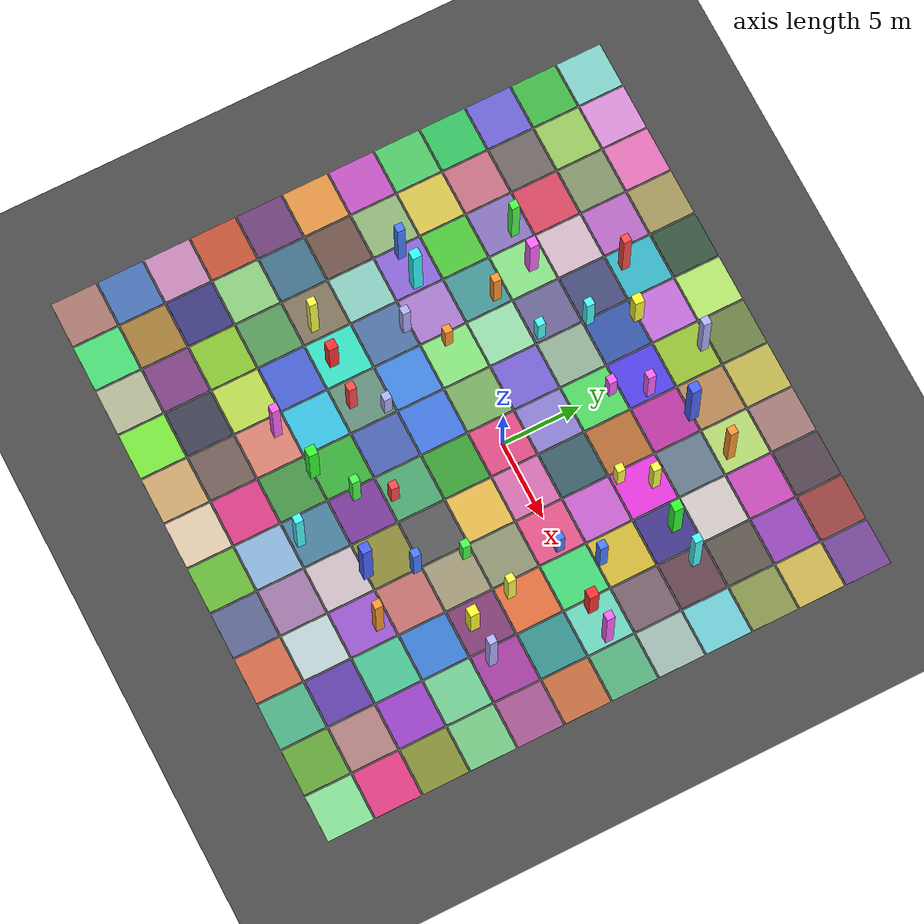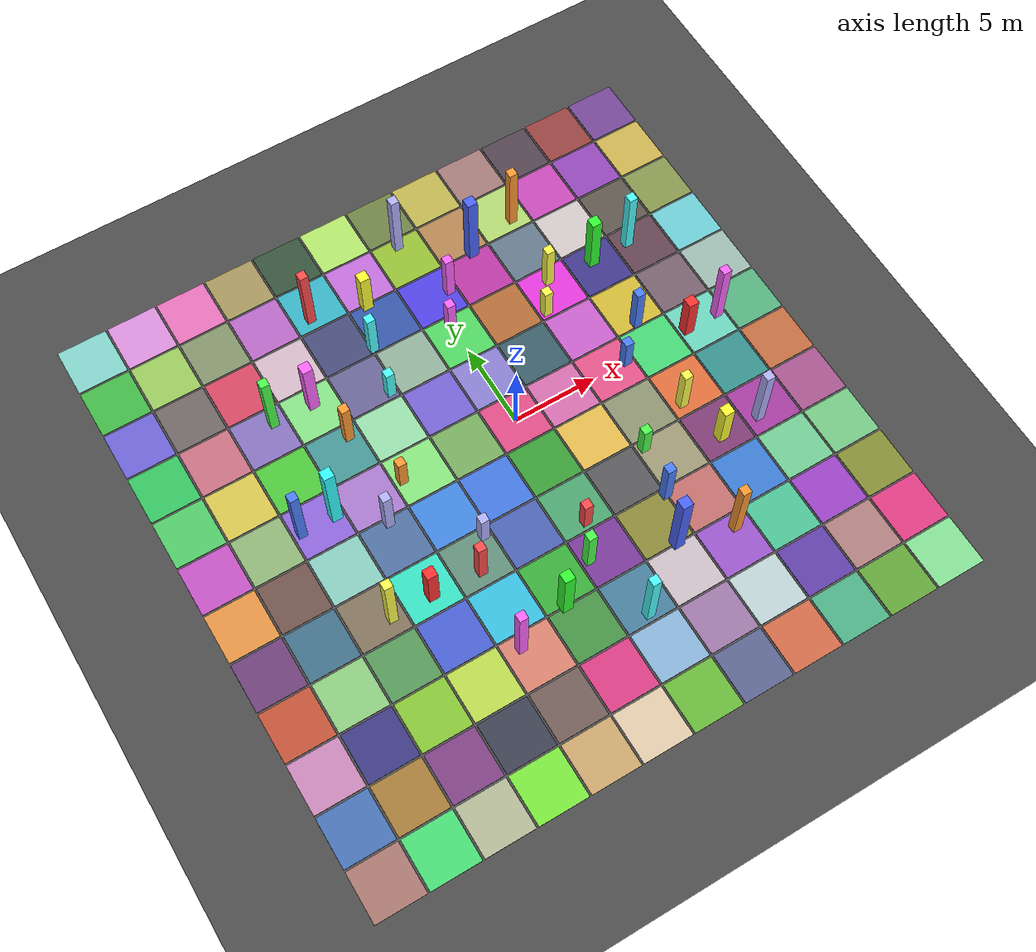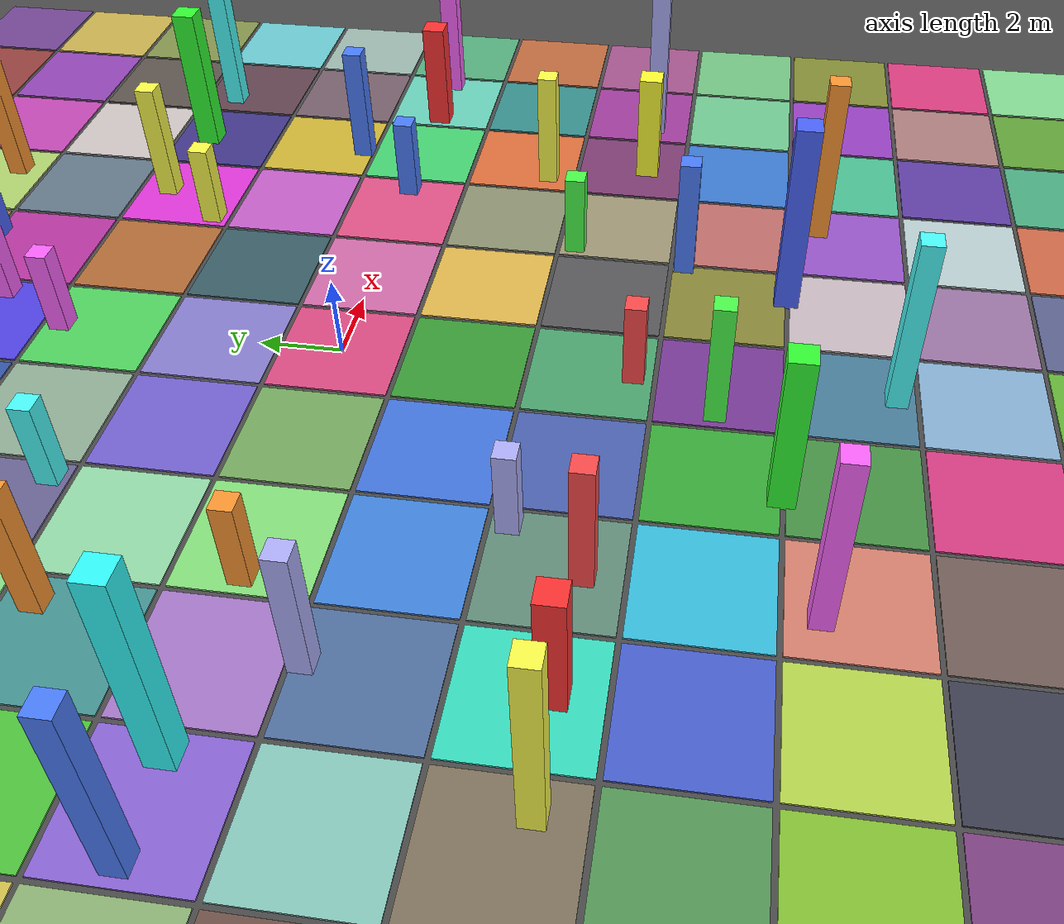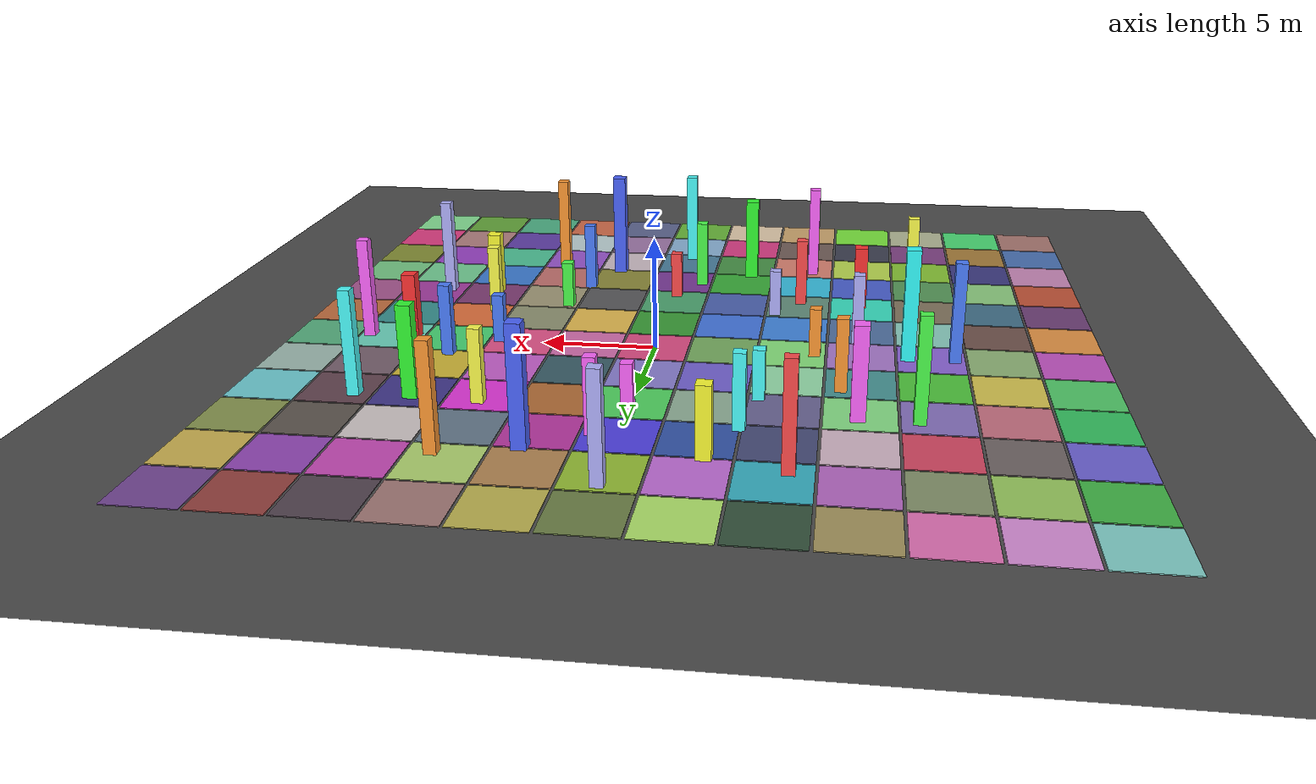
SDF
<?xml version="1.0" encoding="UTF-8"?>
<sdf version="1.9">
  <world name="swarm_autonomy_vio">
    <physics type="ode"><max_step_size>0.004</max_step_size><real_time_factor>1.0</real_time_factor><real_time_update_rate>250</real_time_update_rate></physics>
    <gravity>0 0 -9.8</gravity><magnetic_field>6e-06 2.3e-05 -4.2e-05</magnetic_field><atmosphere type="adiabatic"/>
    <scene><grid>false</grid><ambient>0.7 0.7 0.7 1</ambient><background>0.7 0.8 0.9 1</background><shadows>true</shadows></scene>
    <model name="ground_plane"><static>true</static><link name="link">
      <collision name="collision"><geometry><plane><normal>0 0 1</normal><size>1 1</size></plane></geometry><surface><friction><ode/></friction></surface></collision>
      <visual name="visual"><geometry><plane><normal>0 0 1</normal><size>200 200</size></plane></geometry>
        <material><ambient>0.3 0.3 0.3 1</ambient><diffuse>0.3 0.3 0.3 1</diffuse></material></visual>
      <pose>0 0 0 0 0 0</pose></link></model>
    <light name="sunUTC" type="directional"><pose>0 0 500 0 0 0</pose><cast_shadows>true</cast_shadows><intensity>1</intensity>
      <direction>0.001 0.625 -0.78</direction><diffuse>0.9 0.9 0.9 1</diffuse><specular>0.3 0.3 0.3 1</specular>
      <attenuation><range>2000</range><linear>0</linear><constant>1</constant><quadratic>0</quadratic></attenuation>
      <spot><inner_angle>0</inner_angle><outer_angle>0</outer_angle><falloff>0</falloff></spot></light>
    <model name="t_0_0"><static>true</static><pose>-18.0 -18.0 0.02 0 0 0</pose>
      <link name="l"><visual name="v"><geometry><box><size>2.88 2.88 0.04</size></box></geometry>
      <material><ambient>0.66 0.47 0.44 1</ambient><diffuse>0.66 0.47 0.44 1</diffuse></material></visual></link></model>
    <model name="t_0_1"><static>true</static><pose>-18.0 -15.0 0.02 0 0 0</pose>
      <link name="l"><visual name="v"><geometry><box><size>2.88 2.88 0.04</size></box></geometry>
      <material><ambient>0.29 0.45 0.71 1</ambient><diffuse>0.29 0.45 0.71 1</diffuse></material></visual></link></model>
    <model name="t_0_2"><static>true</static><pose>-18.0 -12.0 0.02 0 0 0</pose>
      <link name="l"><visual name="v"><geometry><box><size>2.88 2.88 0.04</size></box></geometry>
      <material><ambient>0.78 0.53 0.72 1</ambient><diffuse>0.78 0.53 0.72 1</diffuse></material></visual></link></model>
    <model name="t_0_3"><static>true</static><pose>-18.0 -9.0 0.02 0 0 0</pose>
      <link name="l"><visual name="v"><geometry><box><size>2.88 2.88 0.04</size></box></geometry>
      <material><ambient>0.76 0.33 0.22 1</ambient><diffuse>0.76 0.33 0.22 1</diffuse></material></visual></link></model>
    <model name="t_0_4"><static>true</static><pose>-18.0 -6.0 0.02 0 0 0</pose>
      <link name="l"><visual name="v"><geometry><box><size>2.88 2.88 0.04</size></box></geometry>
      <material><ambient>0.43 0.25 0.47 1</ambient><diffuse>0.43 0.25 0.47 1</diffuse></material></visual></link></model>
    <model name="t_0_5"><static>true</static><pose>-18.0 -3.0 0.02 0 0 0</pose>
      <link name="l"><visual name="v"><geometry><box><size>2.88 2.88 0.04</size></box></geometry>
      <material><ambient>0.89 0.58 0.27 1</ambient><diffuse>0.89 0.58 0.27 1</diffuse></material></visual></link></model>
    <model name="t_0_6"><static>true</static><pose>-18.0 0.0 0.02 0 0 0</pose>
      <link name="l"><visual name="v"><geometry><box><size>2.88 2.88 0.04</size></box></geometry>
      <material><ambient>0.76 0.33 0.76 1</ambient><diffuse>0.76 0.33 0.76 1</diffuse></material></visual></link></model>
    <model name="t_0_7"><static>true</static><pose>-18.0 3.0 0.02 0 0 0</pose>
      <link name="l"><visual name="v"><geometry><box><size>2.88 2.88 0.04</size></box></geometry>
      <material><ambient>0.32 0.79 0.41 1</ambient><diffuse>0.32 0.79 0.41 1</diffuse></material></visual></link></model>
    <model name="t_0_8"><static>true</static><pose>-18.0 6.0 0.02 0 0 0</pose>
      <link name="l"><visual name="v"><geometry><box><size>2.88 2.88 0.04</size></box></geometry>
      <material><ambient>0.21 0.76 0.38 1</ambient><diffuse>0.21 0.76 0.38 1</diffuse></material></visual></link></model>
    <model name="t_0_9"><static>true</static><pose>-18.0 9.0 0.02 0 0 0</pose>
      <link name="l"><visual name="v"><geometry><box><size>2.88 2.88 0.04</size></box></geometry>
      <material><ambient>0.43 0.39 0.84 1</ambient><diffuse>0.43 0.39 0.84 1</diffuse></material></visual></link></model>
    <model name="t_0_10"><static>true</static><pose>-18.0 12.0 0.02 0 0 0</pose>
      <link name="l"><visual name="v"><geometry><box><size>2.88 2.88 0.04</size></box></geometry>
      <material><ambient>0.26 0.72 0.28 1</ambient><diffuse>0.26 0.72 0.28 1</diffuse></material></visual></link></model>
    <model name="t_0_11"><static>true</static><pose>-18.0 15.0 0.02 0 0 0</pose>
      <link name="l"><visual name="v"><geometry><box><size>2.88 2.88 0.04</size></box></geometry>
      <material><ambient>0.51 0.82 0.79 1</ambient><diffuse>0.51 0.82 0.79 1</diffuse></material></visual></link></model>
    <model name="t_1_0"><static>true</static><pose>-15.0 -18.0 0.02 0 0 0</pose>
      <link name="l"><visual name="v"><geometry><box><size>2.88 2.88 0.04</size></box></geometry>
      <material><ambient>0.29 0.86 0.46 1</ambient><diffuse>0.29 0.86 0.46 1</diffuse></material></visual></link></model>
    <model name="t_1_1"><static>true</static><pose>-15.0 -15.0 0.02 0 0 0</pose>
      <link name="l"><visual name="v"><geometry><box><size>2.88 2.88 0.04</size></box></geometry>
      <material><ambient>0.65 0.49 0.23 1</ambient><diffuse>0.65 0.49 0.23 1</diffuse></material></visual></link></model>
    <model name="t_1_2"><static>true</static><pose>-15.0 -12.0 0.02 0 0 0</pose>
      <link name="l"><visual name="v"><geometry><box><size>2.88 2.88 0.04</size></box></geometry>
      <material><ambient>0.24 0.23 0.51 1</ambient><diffuse>0.24 0.23 0.51 1</diffuse></material></visual></link></model>
    <model name="t_1_3"><static>true</static><pose>-15.0 -9.0 0.02 0 0 0</pose>
      <link name="l"><visual name="v"><geometry><box><size>2.88 2.88 0.04</size></box></geometry>
      <material><ambient>0.55 0.80 0.50 1</ambient><diffuse>0.55 0.80 0.50 1</diffuse></material></visual></link></model>
    <model name="t_1_4"><static>true</static><pose>-15.0 -6.0 0.02 0 0 0</pose>
      <link name="l"><visual name="v"><geometry><box><size>2.88 2.88 0.04</size></box></geometry>
      <material><ambient>0.26 0.44 0.54 1</ambient><diffuse>0.26 0.44 0.54 1</diffuse></material></visual></link></model>
    <model name="t_1_5"><static>true</static><pose>-15.0 -3.0 0.02 0 0 0</pose>
      <link name="l"><visual name="v"><geometry><box><size>2.88 2.88 0.04</size></box></geometry>
      <material><ambient>0.44 0.33 0.30 1</ambient><diffuse>0.44 0.33 0.30 1</diffuse></material></visual></link></model>
    <model name="t_1_6"><static>true</static><pose>-15.0 0.0 0.02 0 0 0</pose>
      <link name="l"><visual name="v"><geometry><box><size>2.88 2.88 0.04</size></box></geometry>
      <material><ambient>0.56 0.71 0.47 1</ambient><diffuse>0.56 0.71 0.47 1</diffuse></material></visual></link></model>
    <model name="t_1_7"><static>true</static><pose>-15.0 3.0 0.02 0 0 0</pose>
      <link name="l"><visual name="v"><geometry><box><size>2.88 2.88 0.04</size></box></geometry>
      <material><ambient>0.84 0.77 0.31 1</ambient><diffuse>0.84 0.77 0.31 1</diffuse></material></visual></link></model>
    <model name="t_1_8"><static>true</static><pose>-15.0 6.0 0.02 0 0 0</pose>
      <link name="l"><visual name="v"><geometry><box><size>2.88 2.88 0.04</size></box></geometry>
      <material><ambient>0.78 0.44 0.51 1</ambient><diffuse>0.78 0.44 0.51 1</diffuse></material></visual></link></model>
    <model name="t_1_9"><static>true</static><pose>-15.0 9.0 0.02 0 0 0</pose>
      <link name="l"><visual name="v"><geometry><box><size>2.88 2.88 0.04</size></box></geometry>
      <material><ambient>0.44 0.40 0.40 1</ambient><diffuse>0.44 0.40 0.40 1</diffuse></material></visual></link></model>
    <model name="t_1_10"><static>true</static><pose>-15.0 12.0 0.02 0 0 0</pose>
      <link name="l"><visual name="v"><geometry><box><size>2.88 2.88 0.04</size></box></geometry>
      <material><ambient>0.60 0.79 0.37 1</ambient><diffuse>0.60 0.79 0.37 1</diffuse></material></visual></link></model>
    <model name="t_1_11"><static>true</static><pose>-15.0 15.0 0.02 0 0 0</pose>
      <link name="l"><visual name="v"><geometry><box><size>2.88 2.88 0.04</size></box></geometry>
      <material><ambient>0.85 0.56 0.85 1</ambient><diffuse>0.85 0.56 0.85 1</diffuse></material></visual></link></model>
    <model name="t_2_0"><static>true</static><pose>-12.0 -18.0 0.02 0 0 0</pose>
      <link name="l"><visual name="v"><geometry><box><size>2.88 2.88 0.04</size></box></geometry>
      <material><ambient>0.70 0.72 0.59 1</ambient><diffuse>0.70 0.72 0.59 1</diffuse></material></visual></link></model>
    <model name="t_2_1"><static>true</static><pose>-12.0 -15.0 0.02 0 0 0</pose>
      <link name="l"><visual name="v"><geometry><box><size>2.88 2.88 0.04</size></box></geometry>
      <material><ambient>0.50 0.26 0.52 1</ambient><diffuse>0.50 0.26 0.52 1</diffuse></material></visual></link></model>
    <model name="t_2_2"><static>true</static><pose>-12.0 -12.0 0.02 0 0 0</pose>
      <link name="l"><visual name="v"><geometry><box><size>2.88 2.88 0.04</size></box></geometry>
      <material><ambient>0.53 0.77 0.21 1</ambient><diffuse>0.53 0.77 0.21 1</diffuse></material></visual></link></model>
    <model name="t_2_3"><static>true</static><pose>-12.0 -9.0 0.02 0 0 0</pose>
      <link name="l"><visual name="v"><geometry><box><size>2.88 2.88 0.04</size></box></geometry>
      <material><ambient>0.34 0.60 0.35 1</ambient><diffuse>0.34 0.60 0.35 1</diffuse></material></visual></link></model>
    <model name="t_2_4"><static>true</static><pose>-12.0 -6.0 0.02 0 0 0</pose>
      <link name="l"><visual name="v"><geometry><box><size>2.88 2.88 0.04</size></box></geometry>
      <material><ambient>0.51 0.46 0.37 1</ambient><diffuse>0.51 0.46 0.37 1</diffuse></material></visual></link></model>
    <model name="t_2_5"><static>true</static><pose>-12.0 -3.0 0.02 0 0 0</pose>
      <link name="l"><visual name="v"><geometry><box><size>2.88 2.88 0.04</size></box></geometry>
      <material><ambient>0.54 0.80 0.75 1</ambient><diffuse>0.54 0.80 0.75 1</diffuse></material></visual></link></model>
    <model name="t_2_6"><static>true</static><pose>-12.0 0.0 0.02 0 0 0</pose>
      <link name="l"><visual name="v"><geometry><box><size>2.88 2.88 0.04</size></box></geometry>
      <material><ambient>0.55 0.40 0.85 1</ambient><diffuse>0.55 0.40 0.85 1</diffuse></material></visual></link></model>
    <model name="t_2_7"><static>true</static><pose>-12.0 3.0 0.02 0 0 0</pose>
      <link name="l"><visual name="v"><geometry><box><size>2.88 2.88 0.04</size></box></geometry>
      <material><ambient>0.31 0.78 0.24 1</ambient><diffuse>0.31 0.78 0.24 1</diffuse></material></visual></link></model>
    <model name="t_2_8"><static>true</static><pose>-12.0 6.0 0.02 0 0 0</pose>
      <link name="l"><visual name="v"><geometry><box><size>2.88 2.88 0.04</size></box></geometry>
      <material><ambient>0.53 0.45 0.75 1</ambient><diffuse>0.53 0.45 0.75 1</diffuse></material></visual></link></model>
    <model name="t_2_9"><static>true</static><pose>-12.0 9.0 0.02 0 0 0</pose>
      <link name="l"><visual name="v"><geometry><box><size>2.88 2.88 0.04</size></box></geometry>
      <material><ambient>0.84 0.28 0.39 1</ambient><diffuse>0.84 0.28 0.39 1</diffuse></material></visual></link></model>
    <model name="t_2_10"><static>true</static><pose>-12.0 12.0 0.02 0 0 0</pose>
      <link name="l"><visual name="v"><geometry><box><size>2.88 2.88 0.04</size></box></geometry>
      <material><ambient>0.52 0.58 0.42 1</ambient><diffuse>0.52 0.58 0.42 1</diffuse></material></visual></link></model>
    <model name="t_2_11"><static>true</static><pose>-12.0 15.0 0.02 0 0 0</pose>
      <link name="l"><visual name="v"><geometry><box><size>2.88 2.88 0.04</size></box></geometry>
      <material><ambient>0.89 0.45 0.72 1</ambient><diffuse>0.89 0.45 0.72 1</diffuse></material></visual></link></model>
    <model name="t_3_0"><static>true</static><pose>-9.0 -18.0 0.02 0 0 0</pose>
      <link name="l"><visual name="v"><geometry><box><size>2.88 2.88 0.04</size></box></geometry>
      <material><ambient>0.48 0.90 0.24 1</ambient><diffuse>0.48 0.90 0.24 1</diffuse></material></visual></link></model>
    <model name="t_3_1"><static>true</static><pose>-9.0 -15.0 0.02 0 0 0</pose>
      <link name="l"><visual name="v"><geometry><box><size>2.88 2.88 0.04</size></box></geometry>
      <material><ambient>0.24 0.25 0.32 1</ambient><diffuse>0.24 0.25 0.32 1</diffuse></material></visual></link></model>
    <model name="t_3_2"><static>true</static><pose>-9.0 -12.0 0.02 0 0 0</pose>
      <link name="l"><visual name="v"><geometry><box><size>2.88 2.88 0.04</size></box></geometry>
      <material><ambient>0.73 0.85 0.31 1</ambient><diffuse>0.73 0.85 0.31 1</diffuse></material></visual></link></model>
    <model name="t_3_3"><static>true</static><pose>-9.0 -9.0 0.02 0 0 0</pose>
      <link name="l"><visual name="v"><geometry><box><size>2.88 2.88 0.04</size></box></geometry>
      <material><ambient>0.29 0.38 0.82 1</ambient><diffuse>0.29 0.38 0.82 1</diffuse></material></visual></link></model>
    <model name="t_3_4"><static>true</static><pose>-9.0 -6.0 0.02 0 0 0</pose>
      <link name="l"><visual name="v"><geometry><box><size>2.88 2.88 0.04</size></box></geometry>
      <material><ambient>0.22 0.88 0.76 1</ambient><diffuse>0.22 0.88 0.76 1</diffuse></material></visual></link></model>
    <model name="t_3_5"><static>true</static><pose>-9.0 -3.0 0.02 0 0 0</pose>
      <link name="l"><visual name="v"><geometry><box><size>2.88 2.88 0.04</size></box></geometry>
      <material><ambient>0.32 0.45 0.64 1</ambient><diffuse>0.32 0.45 0.64 1</diffuse></material></visual></link></model>
    <model name="t_3_6"><static>true</static><pose>-9.0 0.0 0.02 0 0 0</pose>
      <link name="l"><visual name="v"><geometry><box><size>2.88 2.88 0.04</size></box></geometry>
      <material><ambient>0.66 0.48 0.80 1</ambient><diffuse>0.66 0.48 0.80 1</diffuse></material></visual></link></model>
    <model name="t_3_7"><static>true</static><pose>-9.0 3.0 0.02 0 0 0</pose>
      <link name="l"><visual name="v"><geometry><box><size>2.88 2.88 0.04</size></box></geometry>
      <material><ambient>0.28 0.59 0.59 1</ambient><diffuse>0.28 0.59 0.59 1</diffuse></material></visual></link></model>
    <model name="t_3_8"><static>true</static><pose>-9.0 6.0 0.02 0 0 0</pose>
      <link name="l"><visual name="v"><geometry><box><size>2.88 2.88 0.04</size></box></geometry>
      <material><ambient>0.53 0.88 0.53 1</ambient><diffuse>0.53 0.88 0.53 1</diffuse></material></visual></link></model>
    <model name="t_3_9"><static>true</static><pose>-9.0 9.0 0.02 0 0 0</pose>
      <link name="l"><visual name="v"><geometry><box><size>2.88 2.88 0.04</size></box></geometry>
      <material><ambient>0.83 0.72 0.78 1</ambient><diffuse>0.83 0.72 0.78 1</diffuse></material></visual></link></model>
    <model name="t_3_10"><static>true</static><pose>-9.0 12.0 0.02 0 0 0</pose>
      <link name="l"><visual name="v"><geometry><box><size>2.88 2.88 0.04</size></box></geometry>
      <material><ambient>0.72 0.41 0.77 1</ambient><diffuse>0.72 0.41 0.77 1</diffuse></material></visual></link></model>
    <model name="t_3_11"><static>true</static><pose>-9.0 15.0 0.02 0 0 0</pose>
      <link name="l"><visual name="v"><geometry><box><size>2.88 2.88 0.04</size></box></geometry>
      <material><ambient>0.65 0.59 0.37 1</ambient><diffuse>0.65 0.59 0.37 1</diffuse></material></visual></link></model>
    <model name="t_4_0"><static>true</static><pose>-6.0 -18.0 0.02 0 0 0</pose>
      <link name="l"><visual name="v"><geometry><box><size>2.88 2.88 0.04</size></box></geometry>
      <material><ambient>0.80 0.65 0.43 1</ambient><diffuse>0.80 0.65 0.43 1</diffuse></material></visual></link></model>
    <model name="t_4_1"><static>true</static><pose>-6.0 -15.0 0.02 0 0 0</pose>
      <link name="l"><visual name="v"><geometry><box><size>2.88 2.88 0.04</size></box></geometry>
      <material><ambient>0.45 0.37 0.35 1</ambient><diffuse>0.45 0.37 0.35 1</diffuse></material></visual></link></model>
    <model name="t_4_2"><static>true</static><pose>-6.0 -12.0 0.02 0 0 0</pose>
      <link name="l"><visual name="v"><geometry><box><size>2.88 2.88 0.04</size></box></geometry>
      <material><ambient>0.85 0.51 0.44 1</ambient><diffuse>0.85 0.51 0.44 1</diffuse></material></visual></link></model>
    <model name="t_4_3"><static>true</static><pose>-6.0 -9.0 0.02 0 0 0</pose>
      <link name="l"><visual name="v"><geometry><box><size>2.88 2.88 0.04</size></box></geometry>
      <material><ambient>0.22 0.75 0.88 1</ambient><diffuse>0.22 0.75 0.88 1</diffuse></material></visual></link></model>
    <model name="t_4_4"><static>true</static><pose>-6.0 -6.0 0.02 0 0 0</pose>
      <link name="l"><visual name="v"><geometry><box><size>2.88 2.88 0.04</size></box></geometry>
      <material><ambient>0.39 0.56 0.49 1</ambient><diffuse>0.39 0.56 0.49 1</diffuse></material></visual></link></model>
    <model name="t_4_5"><static>true</static><pose>-6.0 -3.0 0.02 0 0 0</pose>
      <link name="l"><visual name="v"><geometry><box><size>2.88 2.88 0.04</size></box></geometry>
      <material><ambient>0.26 0.53 0.88 1</ambient><diffuse>0.26 0.53 0.88 1</diffuse></material></visual></link></model>
    <model name="t_4_6"><static>true</static><pose>-6.0 0.0 0.02 0 0 0</pose>
      <link name="l"><visual name="v"><geometry><box><size>2.88 2.88 0.04</size></box></geometry>
      <material><ambient>0.53 0.89 0.49 1</ambient><diffuse>0.53 0.89 0.49 1</diffuse></material></visual></link></model>
    <model name="t_4_7"><static>true</static><pose>-6.0 3.0 0.02 0 0 0</pose>
      <link name="l"><visual name="v"><geometry><box><size>2.88 2.88 0.04</size></box></geometry>
      <material><ambient>0.59 0.87 0.67 1</ambient><diffuse>0.59 0.87 0.67 1</diffuse></material></visual></link></model>
    <model name="t_4_8"><static>true</static><pose>-6.0 6.0 0.02 0 0 0</pose>
      <link name="l"><visual name="v"><geometry><box><size>2.88 2.88 0.04</size></box></geometry>
      <material><ambient>0.42 0.40 0.59 1</ambient><diffuse>0.42 0.40 0.59 1</diffuse></material></visual></link></model>
    <model name="t_4_9"><static>true</static><pose>-6.0 9.0 0.02 0 0 0</pose>
      <link name="l"><visual name="v"><geometry><box><size>2.88 2.88 0.04</size></box></geometry>
      <material><ambient>0.28 0.30 0.48 1</ambient><diffuse>0.28 0.30 0.48 1</diffuse></material></visual></link></model>
    <model name="t_4_10"><static>true</static><pose>-6.0 12.0 0.02 0 0 0</pose>
      <link name="l"><visual name="v"><geometry><box><size>2.88 2.88 0.04</size></box></geometry>
      <material><ambient>0.22 0.70 0.77 1</ambient><diffuse>0.22 0.70 0.77 1</diffuse></material></visual></link></model>
    <model name="t_4_11"><static>true</static><pose>-6.0 15.0 0.02 0 0 0</pose>
      <link name="l"><visual name="v"><geometry><box><size>2.88 2.88 0.04</size></box></geometry>
      <material><ambient>0.21 0.33 0.24 1</ambient><diffuse>0.21 0.33 0.24 1</diffuse></material></visual></link></model>
    <model name="t_5_0"><static>true</static><pose>-3.0 -18.0 0.02 0 0 0</pose>
      <link name="l"><visual name="v"><geometry><box><size>2.88 2.88 0.04</size></box></geometry>
      <material><ambient>0.88 0.79 0.67 1</ambient><diffuse>0.88 0.79 0.67 1</diffuse></material></visual></link></model>
    <model name="t_5_1"><static>true</static><pose>-3.0 -15.0 0.02 0 0 0</pose>
      <link name="l"><visual name="v"><geometry><box><size>2.88 2.88 0.04</size></box></geometry>
      <material><ambient>0.85 0.24 0.52 1</ambient><diffuse>0.85 0.24 0.52 1</diffuse></material></visual></link></model>
    <model name="t_5_2"><static>true</static><pose>-3.0 -12.0 0.02 0 0 0</pose>
      <link name="l"><visual name="v"><geometry><box><size>2.88 2.88 0.04</size></box></geometry>
      <material><ambient>0.28 0.58 0.28 1</ambient><diffuse>0.28 0.58 0.28 1</diffuse></material></visual></link></model>
    <model name="t_5_3"><static>true</static><pose>-3.0 -9.0 0.02 0 0 0</pose>
      <link name="l"><visual name="v"><geometry><box><size>2.88 2.88 0.04</size></box></geometry>
      <material><ambient>0.23 0.68 0.23 1</ambient><diffuse>0.23 0.68 0.23 1</diffuse></material></visual></link></model>
    <model name="t_5_4"><static>true</static><pose>-3.0 -6.0 0.02 0 0 0</pose>
      <link name="l"><visual name="v"><geometry><box><size>2.88 2.88 0.04</size></box></geometry>
      <material><ambient>0.30 0.39 0.70 1</ambient><diffuse>0.30 0.39 0.70 1</diffuse></material></visual></link></model>
    <model name="t_5_5"><static>true</static><pose>-3.0 -3.0 0.02 0 0 0</pose>
      <link name="l"><visual name="v"><geometry><box><size>2.88 2.88 0.04</size></box></geometry>
      <material><ambient>0.27 0.47 0.88 1</ambient><diffuse>0.27 0.47 0.88 1</diffuse></material></visual></link></model>
    <model name="t_5_6"><static>true</static><pose>-3.0 0.0 0.02 0 0 0</pose>
      <link name="l"><visual name="v"><geometry><box><size>2.88 2.88 0.04</size></box></geometry>
      <material><ambient>0.47 0.68 0.38 1</ambient><diffuse>0.47 0.68 0.38 1</diffuse></material></visual></link></model>
    <model name="t_5_7"><static>true</static><pose>-3.0 3.0 0.02 0 0 0</pose>
      <link name="l"><visual name="v"><geometry><box><size>2.88 2.88 0.04</size></box></geometry>
      <material><ambient>0.46 0.39 0.83 1</ambient><diffuse>0.46 0.39 0.83 1</diffuse></material></visual></link></model>
    <model name="t_5_8"><static>true</static><pose>-3.0 6.0 0.02 0 0 0</pose>
      <link name="l"><visual name="v"><geometry><box><size>2.88 2.88 0.04</size></box></geometry>
      <material><ambient>0.57 0.69 0.60 1</ambient><diffuse>0.57 0.69 0.60 1</diffuse></material></visual></link></model>
    <model name="t_5_9"><static>true</static><pose>-3.0 9.0 0.02 0 0 0</pose>
      <link name="l"><visual name="v"><geometry><box><size>2.88 2.88 0.04</size></box></geometry>
      <material><ambient>0.21 0.34 0.67 1</ambient><diffuse>0.21 0.34 0.67 1</diffuse></material></visual></link></model>
    <model name="t_5_10"><static>true</static><pose>-3.0 12.0 0.02 0 0 0</pose>
      <link name="l"><visual name="v"><geometry><box><size>2.88 2.88 0.04</size></box></geometry>
      <material><ambient>0.76 0.43 0.85 1</ambient><diffuse>0.76 0.43 0.85 1</diffuse></material></visual></link></model>
    <model name="t_5_11"><static>true</static><pose>-3.0 15.0 0.02 0 0 0</pose>
      <link name="l"><visual name="v"><geometry><box><size>2.88 2.88 0.04</size></box></geometry>
      <material><ambient>0.70 0.90 0.42 1</ambient><diffuse>0.70 0.90 0.42 1</diffuse></material></visual></link></model>
    <model name="t_6_0"><static>true</static><pose>0.0 -18.0 0.02 0 0 0</pose>
      <link name="l"><visual name="v"><geometry><box><size>2.88 2.88 0.04</size></box></geometry>
      <material><ambient>0.41 0.72 0.23 1</ambient><diffuse>0.41 0.72 0.23 1</diffuse></material></visual></link></model>
    <model name="t_6_1"><static>true</static><pose>0.0 -15.0 0.02 0 0 0</pose>
      <link name="l"><visual name="v"><geometry><box><size>2.88 2.88 0.04</size></box></geometry>
      <material><ambient>0.54 0.70 0.84 1</ambient><diffuse>0.54 0.70 0.84 1</diffuse></material></visual></link></model>
    <model name="t_6_2"><static>true</static><pose>0.0 -12.0 0.02 0 0 0</pose>
      <link name="l"><visual name="v"><geometry><box><size>2.88 2.88 0.04</size></box></geometry>
      <material><ambient>0.29 0.50 0.62 1</ambient><diffuse>0.29 0.50 0.62 1</diffuse></material></visual></link></model>
    <model name="t_6_3"><static>true</static><pose>0.0 -9.0 0.02 0 0 0</pose>
      <link name="l"><visual name="v"><geometry><box><size>2.88 2.88 0.04</size></box></geometry>
      <material><ambient>0.48 0.23 0.60 1</ambient><diffuse>0.48 0.23 0.60 1</diffuse></material></visual></link></model>
    <model name="t_6_4"><static>true</static><pose>0.0 -6.0 0.02 0 0 0</pose>
      <link name="l"><visual name="v"><geometry><box><size>2.88 2.88 0.04</size></box></geometry>
      <material><ambient>0.30 0.65 0.44 1</ambient><diffuse>0.30 0.65 0.44 1</diffuse></material></visual></link></model>
    <model name="t_6_5"><static>true</static><pose>0.0 -3.0 0.02 0 0 0</pose>
      <link name="l"><visual name="v"><geometry><box><size>2.88 2.88 0.04</size></box></geometry>
      <material><ambient>0.23 0.62 0.22 1</ambient><diffuse>0.23 0.62 0.22 1</diffuse></material></visual></link></model>
    <model name="t_6_6"><static>true</static><pose>0.0 0.0 0.02 0 0 0</pose>
      <link name="l"><visual name="v"><geometry><box><size>2.88 2.88 0.04</size></box></geometry>
      <material><ambient>0.87 0.30 0.52 1</ambient><diffuse>0.87 0.30 0.52 1</diffuse></material></visual></link></model>
    <model name="t_6_7"><static>true</static><pose>0.0 3.0 0.02 0 0 0</pose>
      <link name="l"><visual name="v"><geometry><box><size>2.88 2.88 0.04</size></box></geometry>
      <material><ambient>0.54 0.50 0.82 1</ambient><diffuse>0.54 0.50 0.82 1</diffuse></material></visual></link></model>
    <model name="t_6_8"><static>true</static><pose>0.0 6.0 0.02 0 0 0</pose>
      <link name="l"><visual name="v"><geometry><box><size>2.88 2.88 0.04</size></box></geometry>
      <material><ambient>0.32 0.84 0.38 1</ambient><diffuse>0.32 0.84 0.38 1</diffuse></material></visual></link></model>
    <model name="t_6_9"><static>true</static><pose>0.0 9.0 0.02 0 0 0</pose>
      <link name="l"><visual name="v"><geometry><box><size>2.88 2.88 0.04</size></box></geometry>
      <material><ambient>0.32 0.26 0.90 1</ambient><diffuse>0.32 0.26 0.90 1</diffuse></material></visual></link></model>
    <model name="t_6_10"><static>true</static><pose>0.0 12.0 0.02 0 0 0</pose>
      <link name="l"><visual name="v"><geometry><box><size>2.88 2.88 0.04</size></box></geometry>
      <material><ambient>0.59 0.75 0.21 1</ambient><diffuse>0.59 0.75 0.21 1</diffuse></material></visual></link></model>
    <model name="t_6_11"><static>true</static><pose>0.0 15.0 0.02 0 0 0</pose>
      <link name="l"><visual name="v"><geometry><box><size>2.88 2.88 0.04</size></box></geometry>
      <material><ambient>0.43 0.51 0.28 1</ambient><diffuse>0.43 0.51 0.28 1</diffuse></material></visual></link></model>
    <model name="t_7_0"><static>true</static><pose>3.0 -18.0 0.02 0 0 0</pose>
      <link name="l"><visual name="v"><geometry><box><size>2.88 2.88 0.04</size></box></geometry>
      <material><ambient>0.37 0.40 0.57 1</ambient><diffuse>0.37 0.40 0.57 1</diffuse></material></visual></link></model>
    <model name="t_7_1"><static>true</static><pose>3.0 -15.0 0.02 0 0 0</pose>
      <link name="l"><visual name="v"><geometry><box><size>2.88 2.88 0.04</size></box></geometry>
      <material><ambient>0.62 0.47 0.66 1</ambient><diffuse>0.62 0.47 0.66 1</diffuse></material></visual></link></model>
    <model name="t_7_2"><static>true</static><pose>3.0 -12.0 0.02 0 0 0</pose>
      <link name="l"><visual name="v"><geometry><box><size>2.88 2.88 0.04</size></box></geometry>
      <material><ambient>0.80 0.74 0.77 1</ambient><diffuse>0.80 0.74 0.77 1</diffuse></material></visual></link></model>
    <model name="t_7_3"><static>true</static><pose>3.0 -9.0 0.02 0 0 0</pose>
      <link name="l"><visual name="v"><geometry><box><size>2.88 2.88 0.04</size></box></geometry>
      <material><ambient>0.55 0.54 0.23 1</ambient><diffuse>0.55 0.54 0.23 1</diffuse></material></visual></link></model>
    <model name="t_7_4"><static>true</static><pose>3.0 -6.0 0.02 0 0 0</pose>
      <link name="l"><visual name="v"><geometry><box><size>2.88 2.88 0.04</size></box></geometry>
      <material><ambient>0.35 0.35 0.36 1</ambient><diffuse>0.35 0.35 0.36 1</diffuse></material></visual></link></model>
    <model name="t_7_5"><static>true</static><pose>3.0 -3.0 0.02 0 0 0</pose>
      <link name="l"><visual name="v"><geometry><box><size>2.88 2.88 0.04</size></box></geometry>
      <material><ambient>0.89 0.73 0.31 1</ambient><diffuse>0.89 0.73 0.31 1</diffuse></material></visual></link></model>
    <model name="t_7_6"><static>true</static><pose>3.0 0.0 0.02 0 0 0</pose>
      <link name="l"><visual name="v"><geometry><box><size>2.88 2.88 0.04</size></box></geometry>
      <material><ambient>0.83 0.43 0.68 1</ambient><diffuse>0.83 0.43 0.68 1</diffuse></material></visual></link></model>
    <model name="t_7_7"><static>true</static><pose>3.0 3.0 0.02 0 0 0</pose>
      <link name="l"><visual name="v"><geometry><box><size>2.88 2.88 0.04</size></box></geometry>
      <material><ambient>0.23 0.37 0.41 1</ambient><diffuse>0.23 0.37 0.41 1</diffuse></material></visual></link></model>
    <model name="t_7_8"><static>true</static><pose>3.0 6.0 0.02 0 0 0</pose>
      <link name="l"><visual name="v"><geometry><box><size>2.88 2.88 0.04</size></box></geometry>
      <material><ambient>0.71 0.43 0.22 1</ambient><diffuse>0.71 0.43 0.22 1</diffuse></material></visual></link></model>
    <model name="t_7_9"><static>true</static><pose>3.0 9.0 0.02 0 0 0</pose>
      <link name="l"><visual name="v"><geometry><box><size>2.88 2.88 0.04</size></box></geometry>
      <material><ambient>0.73 0.22 0.64 1</ambient><diffuse>0.73 0.22 0.64 1</diffuse></material></visual></link></model>
    <model name="t_7_10"><static>true</static><pose>3.0 12.0 0.02 0 0 0</pose>
      <link name="l"><visual name="v"><geometry><box><size>2.88 2.88 0.04</size></box></geometry>
      <material><ambient>0.71 0.53 0.33 1</ambient><diffuse>0.71 0.53 0.33 1</diffuse></material></visual></link></model>
    <model name="t_7_11"><static>true</static><pose>3.0 15.0 0.02 0 0 0</pose>
      <link name="l"><visual name="v"><geometry><box><size>2.88 2.88 0.04</size></box></geometry>
      <material><ambient>0.75 0.71 0.32 1</ambient><diffuse>0.75 0.71 0.32 1</diffuse></material></visual></link></model>
    <model name="t_8_0"><static>true</static><pose>6.0 -18.0 0.02 0 0 0</pose>
      <link name="l"><visual name="v"><geometry><box><size>2.88 2.88 0.04</size></box></geometry>
      <material><ambient>0.82 0.42 0.29 1</ambient><diffuse>0.82 0.42 0.29 1</diffuse></material></visual></link></model>
    <model name="t_8_1"><static>true</static><pose>6.0 -15.0 0.02 0 0 0</pose>
      <link name="l"><visual name="v"><geometry><box><size>2.88 2.88 0.04</size></box></geometry>
      <material><ambient>0.74 0.82 0.83 1</ambient><diffuse>0.74 0.82 0.83 1</diffuse></material></visual></link></model>
    <model name="t_8_2"><static>true</static><pose>6.0 -12.0 0.02 0 0 0</pose>
      <link name="l"><visual name="v"><geometry><box><size>2.88 2.88 0.04</size></box></geometry>
      <material><ambient>0.60 0.34 0.80 1</ambient><diffuse>0.60 0.34 0.80 1</diffuse></material></visual></link></model>
    <model name="t_8_3"><static>true</static><pose>6.0 -9.0 0.02 0 0 0</pose>
      <link name="l"><visual name="v"><geometry><box><size>2.88 2.88 0.04</size></box></geometry>
      <material><ambient>0.76 0.44 0.43 1</ambient><diffuse>0.76 0.44 0.43 1</diffuse></material></visual></link></model>
    <model name="t_8_4"><static>true</static><pose>6.0 -6.0 0.02 0 0 0</pose>
      <link name="l"><visual name="v"><geometry><box><size>2.88 2.88 0.04</size></box></geometry>
      <material><ambient>0.63 0.60 0.47 1</ambient><diffuse>0.63 0.60 0.47 1</diffuse></material></visual></link></model>
    <model name="t_8_5"><static>true</static><pose>6.0 -3.0 0.02 0 0 0</pose>
      <link name="l"><visual name="v"><geometry><box><size>2.88 2.88 0.04</size></box></geometry>
      <material><ambient>0.56 0.58 0.45 1</ambient><diffuse>0.56 0.58 0.45 1</diffuse></material></visual></link></model>
    <model name="t_8_6"><static>true</static><pose>6.0 0.0 0.02 0 0 0</pose>
      <link name="l"><visual name="v"><geometry><box><size>2.88 2.88 0.04</size></box></geometry>
      <material><ambient>0.89 0.33 0.54 1</ambient><diffuse>0.89 0.33 0.54 1</diffuse></material></visual></link></model>
    <model name="t_8_7"><static>true</static><pose>6.0 3.0 0.02 0 0 0</pose>
      <link name="l"><visual name="v"><geometry><box><size>2.88 2.88 0.04</size></box></geometry>
      <material><ambient>0.78 0.38 0.80 1</ambient><diffuse>0.78 0.38 0.80 1</diffuse></material></visual></link></model>
    <model name="t_8_8"><static>true</static><pose>6.0 6.0 0.02 0 0 0</pose>
      <link name="l"><visual name="v"><geometry><box><size>2.88 2.88 0.04</size></box></geometry>
      <material><ambient>0.89 0.22 0.86 1</ambient><diffuse>0.89 0.22 0.86 1</diffuse></material></visual></link></model>
    <model name="t_8_9"><static>true</static><pose>6.0 9.0 0.02 0 0 0</pose>
      <link name="l"><visual name="v"><geometry><box><size>2.88 2.88 0.04</size></box></geometry>
      <material><ambient>0.40 0.48 0.55 1</ambient><diffuse>0.40 0.48 0.55 1</diffuse></material></visual></link></model>
    <model name="t_8_10"><static>true</static><pose>6.0 12.0 0.02 0 0 0</pose>
      <link name="l"><visual name="v"><geometry><box><size>2.88 2.88 0.04</size></box></geometry>
      <material><ambient>0.70 0.84 0.44 1</ambient><diffuse>0.70 0.84 0.44 1</diffuse></material></visual></link></model>
    <model name="t_8_11"><static>true</static><pose>6.0 15.0 0.02 0 0 0</pose>
      <link name="l"><visual name="v"><geometry><box><size>2.88 2.88 0.04</size></box></geometry>
      <material><ambient>0.64 0.48 0.47 1</ambient><diffuse>0.64 0.48 0.47 1</diffuse></material></visual></link></model>
    <model name="t_9_0"><static>true</static><pose>9.0 -18.0 0.02 0 0 0</pose>
      <link name="l"><visual name="v"><geometry><box><size>2.88 2.88 0.04</size></box></geometry>
      <material><ambient>0.30 0.69 0.52 1</ambient><diffuse>0.30 0.69 0.52 1</diffuse></material></visual></link></model>
    <model name="t_9_1"><static>true</static><pose>9.0 -15.0 0.02 0 0 0</pose>
      <link name="l"><visual name="v"><geometry><box><size>2.88 2.88 0.04</size></box></geometry>
      <material><ambient>0.38 0.25 0.66 1</ambient><diffuse>0.38 0.25 0.66 1</diffuse></material></visual></link></model>
    <model name="t_9_2"><static>true</static><pose>9.0 -12.0 0.02 0 0 0</pose>
      <link name="l"><visual name="v"><geometry><box><size>2.88 2.88 0.04</size></box></geometry>
      <material><ambient>0.30 0.76 0.59 1</ambient><diffuse>0.30 0.76 0.59 1</diffuse></material></visual></link></model>
    <model name="t_9_3"><static>true</static><pose>9.0 -9.0 0.02 0 0 0</pose>
      <link name="l"><visual name="v"><geometry><box><size>2.88 2.88 0.04</size></box></geometry>
      <material><ambient>0.24 0.49 0.83 1</ambient><diffuse>0.24 0.49 0.83 1</diffuse></material></visual></link></model>
    <model name="t_9_4"><static>true</static><pose>9.0 -6.0 0.02 0 0 0</pose>
      <link name="l"><visual name="v"><geometry><box><size>2.88 2.88 0.04</size></box></geometry>
      <material><ambient>0.50 0.24 0.46 1</ambient><diffuse>0.50 0.24 0.46 1</diffuse></material></visual></link></model>
    <model name="t_9_5"><static>true</static><pose>9.0 -3.0 0.02 0 0 0</pose>
      <link name="l"><visual name="v"><geometry><box><size>2.88 2.88 0.04</size></box></geometry>
      <material><ambient>0.88 0.44 0.24 1</ambient><diffuse>0.88 0.44 0.24 1</diffuse></material></visual></link></model>
    <model name="t_9_6"><static>true</static><pose>9.0 0.0 0.02 0 0 0</pose>
      <link name="l"><visual name="v"><geometry><box><size>2.88 2.88 0.04</size></box></geometry>
      <material><ambient>0.28 0.84 0.46 1</ambient><diffuse>0.28 0.84 0.46 1</diffuse></material></visual></link></model>
    <model name="t_9_7"><static>true</static><pose>9.0 3.0 0.02 0 0 0</pose>
      <link name="l"><visual name="v"><geometry><box><size>2.88 2.88 0.04</size></box></geometry>
      <material><ambient>0.82 0.72 0.22 1</ambient><diffuse>0.82 0.72 0.22 1</diffuse></material></visual></link></model>
    <model name="t_9_8"><static>true</static><pose>9.0 6.0 0.02 0 0 0</pose>
      <link name="l"><visual name="v"><geometry><box><size>2.88 2.88 0.04</size></box></geometry>
      <material><ambient>0.26 0.22 0.55 1</ambient><diffuse>0.26 0.22 0.55 1</diffuse></material></visual></link></model>
    <model name="t_9_9"><static>true</static><pose>9.0 9.0 0.02 0 0 0</pose>
      <link name="l"><visual name="v"><geometry><box><size>2.88 2.88 0.04</size></box></geometry>
      <material><ambient>0.82 0.78 0.78 1</ambient><diffuse>0.82 0.78 0.78 1</diffuse></material></visual></link></model>
    <model name="t_9_10"><static>true</static><pose>9.0 12.0 0.02 0 0 0</pose>
      <link name="l"><visual name="v"><geometry><box><size>2.88 2.88 0.04</size></box></geometry>
      <material><ambient>0.78 0.29 0.72 1</ambient><diffuse>0.78 0.29 0.72 1</diffuse></material></visual></link></model>
    <model name="t_9_11"><static>true</static><pose>9.0 15.0 0.02 0 0 0</pose>
      <link name="l"><visual name="v"><geometry><box><size>2.88 2.88 0.04</size></box></geometry>
      <material><ambient>0.33 0.27 0.32 1</ambient><diffuse>0.33 0.27 0.32 1</diffuse></material></visual></link></model>
    <model name="t_10_0"><static>true</static><pose>12.0 -18.0 0.02 0 0 0</pose>
      <link name="l"><visual name="v"><geometry><box><size>2.88 2.88 0.04</size></box></geometry>
      <material><ambient>0.39 0.65 0.23 1</ambient><diffuse>0.39 0.65 0.23 1</diffuse></material></visual></link></model>
    <model name="t_10_1"><static>true</static><pose>12.0 -15.0 0.02 0 0 0</pose>
      <link name="l"><visual name="v"><geometry><box><size>2.88 2.88 0.04</size></box></geometry>
      <material><ambient>0.69 0.50 0.50 1</ambient><diffuse>0.69 0.50 0.50 1</diffuse></material></visual></link></model>
    <model name="t_10_2"><static>true</static><pose>12.0 -12.0 0.02 0 0 0</pose>
      <link name="l"><visual name="v"><geometry><box><size>2.88 2.88 0.04</size></box></geometry>
      <material><ambient>0.60 0.26 0.77 1</ambient><diffuse>0.60 0.26 0.77 1</diffuse></material></visual></link></model>
    <model name="t_10_3"><static>true</static><pose>12.0 -9.0 0.02 0 0 0</pose>
      <link name="l"><visual name="v"><geometry><box><size>2.88 2.88 0.04</size></box></geometry>
      <material><ambient>0.45 0.80 0.58 1</ambient><diffuse>0.45 0.80 0.58 1</diffuse></material></visual></link></model>
    <model name="t_10_4"><static>true</static><pose>12.0 -6.0 0.02 0 0 0</pose>
      <link name="l"><visual name="v"><geometry><box><size>2.88 2.88 0.04</size></box></geometry>
      <material><ambient>0.64 0.24 0.63 1</ambient><diffuse>0.64 0.24 0.63 1</diffuse></material></visual></link></model>
    <model name="t_10_5"><static>true</static><pose>12.0 -3.0 0.02 0 0 0</pose>
      <link name="l"><visual name="v"><geometry><box><size>2.88 2.88 0.04</size></box></geometry>
      <material><ambient>0.22 0.57 0.56 1</ambient><diffuse>0.22 0.57 0.56 1</diffuse></material></visual></link></model>
    <model name="t_10_6"><static>true</static><pose>12.0 0.0 0.02 0 0 0</pose>
      <link name="l"><visual name="v"><geometry><box><size>2.88 2.88 0.04</size></box></geometry>
      <material><ambient>0.42 0.83 0.74 1</ambient><diffuse>0.42 0.83 0.74 1</diffuse></material></visual></link></model>
    <model name="t_10_7"><static>true</static><pose>12.0 3.0 0.02 0 0 0</pose>
      <link name="l"><visual name="v"><geometry><box><size>2.88 2.88 0.04</size></box></geometry>
      <material><ambient>0.47 0.38 0.43 1</ambient><diffuse>0.47 0.38 0.43 1</diffuse></material></visual></link></model>
    <model name="t_10_8"><static>true</static><pose>12.0 6.0 0.02 0 0 0</pose>
      <link name="l"><visual name="v"><geometry><box><size>2.88 2.88 0.04</size></box></geometry>
      <material><ambient>0.39 0.27 0.32 1</ambient><diffuse>0.39 0.27 0.32 1</diffuse></material></visual></link></model>
    <model name="t_10_9"><static>true</static><pose>12.0 9.0 0.02 0 0 0</pose>
      <link name="l"><visual name="v"><geometry><box><size>2.88 2.88 0.04</size></box></geometry>
      <material><ambient>0.37 0.34 0.31 1</ambient><diffuse>0.37 0.34 0.31 1</diffuse></material></visual></link></model>
    <model name="t_10_10"><static>true</static><pose>12.0 12.0 0.02 0 0 0</pose>
      <link name="l"><visual name="v"><geometry><box><size>2.88 2.88 0.04</size></box></geometry>
      <material><ambient>0.58 0.28 0.72 1</ambient><diffuse>0.58 0.28 0.72 1</diffuse></material></visual></link></model>
    <model name="t_10_11"><static>true</static><pose>12.0 15.0 0.02 0 0 0</pose>
      <link name="l"><visual name="v"><geometry><box><size>2.88 2.88 0.04</size></box></geometry>
      <material><ambient>0.59 0.26 0.25 1</ambient><diffuse>0.59 0.26 0.25 1</diffuse></material></visual></link></model>
    <model name="t_11_0"><static>true</static><pose>15.0 -18.0 0.02 0 0 0</pose>
      <link name="l"><visual name="v"><geometry><box><size>2.88 2.88 0.04</size></box></geometry>
      <material><ambient>0.52 0.87 0.58 1</ambient><diffuse>0.52 0.87 0.58 1</diffuse></material></visual></link></model>
    <model name="t_11_1"><static>true</static><pose>15.0 -15.0 0.02 0 0 0</pose>
      <link name="l"><visual name="v"><geometry><box><size>2.88 2.88 0.04</size></box></geometry>
      <material><ambient>0.87 0.24 0.51 1</ambient><diffuse>0.87 0.24 0.51 1</diffuse></material></visual></link></model>
    <model name="t_11_2"><static>true</static><pose>15.0 -12.0 0.02 0 0 0</pose>
      <link name="l"><visual name="v"><geometry><box><size>2.88 2.88 0.04</size></box></geometry>
      <material><ambient>0.52 0.56 0.21 1</ambient><diffuse>0.52 0.56 0.21 1</diffuse></material></visual></link></model>
    <model name="t_11_3"><static>true</static><pose>15.0 -9.0 0.02 0 0 0</pose>
      <link name="l"><visual name="v"><geometry><box><size>2.88 2.88 0.04</size></box></geometry>
      <material><ambient>0.46 0.78 0.52 1</ambient><diffuse>0.46 0.78 0.52 1</diffuse></material></visual></link></model>
    <model name="t_11_4"><static>true</static><pose>15.0 -6.0 0.02 0 0 0</pose>
      <link name="l"><visual name="v"><geometry><box><size>2.88 2.88 0.04</size></box></geometry>
      <material><ambient>0.65 0.34 0.56 1</ambient><diffuse>0.65 0.34 0.56 1</diffuse></material></visual></link></model>
    <model name="t_11_5"><static>true</static><pose>15.0 -3.0 0.02 0 0 0</pose>
      <link name="l"><visual name="v"><geometry><box><size>2.88 2.88 0.04</size></box></geometry>
      <material><ambient>0.76 0.43 0.25 1</ambient><diffuse>0.76 0.43 0.25 1</diffuse></material></visual></link></model>
    <model name="t_11_6"><static>true</static><pose>15.0 0.0 0.02 0 0 0</pose>
      <link name="l"><visual name="v"><geometry><box><size>2.88 2.88 0.04</size></box></geometry>
      <material><ambient>0.34 0.69 0.50 1</ambient><diffuse>0.34 0.69 0.50 1</diffuse></material></visual></link></model>
    <model name="t_11_7"><static>true</static><pose>15.0 3.0 0.02 0 0 0</pose>
      <link name="l"><visual name="v"><geometry><box><size>2.88 2.88 0.04</size></box></geometry>
      <material><ambient>0.62 0.73 0.69 1</ambient><diffuse>0.62 0.73 0.69 1</diffuse></material></visual></link></model>
    <model name="t_11_8"><static>true</static><pose>15.0 6.0 0.02 0 0 0</pose>
      <link name="l"><visual name="v"><geometry><box><size>2.88 2.88 0.04</size></box></geometry>
      <material><ambient>0.43 0.80 0.83 1</ambient><diffuse>0.43 0.80 0.83 1</diffuse></material></visual></link></model>
    <model name="t_11_9"><static>true</static><pose>15.0 9.0 0.02 0 0 0</pose>
      <link name="l"><visual name="v"><geometry><box><size>2.88 2.88 0.04</size></box></geometry>
      <material><ambient>0.53 0.59 0.31 1</ambient><diffuse>0.53 0.59 0.31 1</diffuse></material></visual></link></model>
    <model name="t_11_10"><static>true</static><pose>15.0 12.0 0.02 0 0 0</pose>
      <link name="l"><visual name="v"><geometry><box><size>2.88 2.88 0.04</size></box></geometry>
      <material><ambient>0.80 0.70 0.32 1</ambient><diffuse>0.80 0.70 0.32 1</diffuse></material></visual></link></model>
    <model name="t_11_11"><static>true</static><pose>15.0 15.0 0.02 0 0 0</pose>
      <link name="l"><visual name="v"><geometry><box><size>2.88 2.88 0.04</size></box></geometry>
      <material><ambient>0.46 0.28 0.59 1</ambient><diffuse>0.46 0.28 0.59 1</diffuse></material></visual></link></model>
    <model name="pil_0"><static>true</static><pose>11.00 0.00 1.5 0 0 0</pose>
      <link name="l"><visual name="v"><geometry><box><size>0.6 0.6 3</size></box></geometry>
      <material><ambient>1 0.2 0.2 1</ambient><diffuse>1 0.2 0.2 1</diffuse></material></visual></link></model>
    <model name="pil_1"><static>true</static><pose>8.90 6.47 2.0 0 0 0</pose>
      <link name="l"><visual name="v"><geometry><box><size>0.6 0.6 4</size></box></geometry>
      <material><ambient>0.2 1 0.2 1</ambient><diffuse>0.2 1 0.2 1</diffuse></material></visual></link></model>
    <model name="pil_2"><static>true</static><pose>3.40 10.46 2.5 0 0 0</pose>
      <link name="l"><visual name="v"><geometry><box><size>0.6 0.6 5</size></box></geometry>
      <material><ambient>0.3 0.4 1 1</ambient><diffuse>0.3 0.4 1 1</diffuse></material></visual></link></model>
    <model name="pil_3"><static>true</static><pose>-3.40 10.46 1.5 0 0 0</pose>
      <link name="l"><visual name="v"><geometry><box><size>0.6 0.6 3</size></box></geometry>
      <material><ambient>1 1 0.2 1</ambient><diffuse>1 1 0.2 1</diffuse></material></visual></link></model>
    <model name="pil_4"><static>true</static><pose>-8.90 6.47 2.0 0 0 0</pose>
      <link name="l"><visual name="v"><geometry><box><size>0.6 0.6 4</size></box></geometry>
      <material><ambient>1 0.4 1 1</ambient><diffuse>1 0.4 1 1</diffuse></material></visual></link></model>
    <model name="pil_5"><static>true</static><pose>-11.00 0.00 2.5 0 0 0</pose>
      <link name="l"><visual name="v"><geometry><box><size>0.6 0.6 5</size></box></geometry>
      <material><ambient>0.2 1 1 1</ambient><diffuse>0.2 1 1 1</diffuse></material></visual></link></model>
    <model name="pil_6"><static>true</static><pose>-8.90 -6.47 1.5 0 0 0</pose>
      <link name="l"><visual name="v"><geometry><box><size>0.6 0.6 3</size></box></geometry>
      <material><ambient>1 0.2 0.2 1</ambient><diffuse>1 0.2 0.2 1</diffuse></material></visual></link></model>
    <model name="pil_7"><static>true</static><pose>-3.40 -10.46 2.0 0 0 0</pose>
      <link name="l"><visual name="v"><geometry><box><size>0.6 0.6 4</size></box></geometry>
      <material><ambient>0.2 1 0.2 1</ambient><diffuse>0.2 1 0.2 1</diffuse></material></visual></link></model>
    <model name="pil_8"><static>true</static><pose>3.40 -10.46 2.5 0 0 0</pose>
      <link name="l"><visual name="v"><geometry><box><size>0.6 0.6 5</size></box></geometry>
      <material><ambient>0.3 0.4 1 1</ambient><diffuse>0.3 0.4 1 1</diffuse></material></visual></link></model>
    <model name="pil_9"><static>true</static><pose>8.90 -6.47 1.5 0 0 0</pose>
      <link name="l"><visual name="v"><geometry><box><size>0.6 0.6 3</size></box></geometry>
      <material><ambient>1 1 0.2 1</ambient><diffuse>1 1 0.2 1</diffuse></material></visual></link></model>
    <model name="pil_10"><static>true</static><pose>7.00 0.00 1.10 0 0 0</pose>
      <link name="l"><visual name="v"><geometry><box><size>0.5 0.5 2.2</size></box></geometry>
      <material><ambient>0.3 0.5 1 1</ambient><diffuse>0.3 0.5 1 1</diffuse></material></visual></link></model>
    <model name="pil_11"><static>true</static><pose>4.95 4.95 1.10 0 0 0</pose>
      <link name="l"><visual name="v"><geometry><box><size>0.5 0.5 2.2</size></box></geometry>
      <material><ambient>1 1 0.3 1</ambient><diffuse>1 1 0.3 1</diffuse></material></visual></link></model>
    <model name="pil_12"><static>true</static><pose>0.00 7.00 1.10 0 0 0</pose>
      <link name="l"><visual name="v"><geometry><box><size>0.5 0.5 2.2</size></box></geometry>
      <material><ambient>1 0.4 1 1</ambient><diffuse>1 0.4 1 1</diffuse></material></visual></link></model>
    <model name="pil_13"><static>true</static><pose>-4.95 4.95 1.10 0 0 0</pose>
      <link name="l"><visual name="v"><geometry><box><size>0.5 0.5 2.2</size></box></geometry>
      <material><ambient>0.3 1 1 1</ambient><diffuse>0.3 1 1 1</diffuse></material></visual></link></model>
    <model name="pil_14"><static>true</static><pose>-7.00 0.00 1.10 0 0 0</pose>
      <link name="l"><visual name="v"><geometry><box><size>0.5 0.5 2.2</size></box></geometry>
      <material><ambient>1 0.6 0.2 1</ambient><diffuse>1 0.6 0.2 1</diffuse></material></visual></link></model>
    <model name="pil_15"><static>true</static><pose>-4.95 -4.95 1.10 0 0 0</pose>
      <link name="l"><visual name="v"><geometry><box><size>0.5 0.5 2.2</size></box></geometry>
      <material><ambient>0.7 0.7 1 1</ambient><diffuse>0.7 0.7 1 1</diffuse></material></visual></link></model>
    <model name="pil_16"><static>true</static><pose>-0.00 -7.00 1.10 0 0 0</pose>
      <link name="l"><visual name="v"><geometry><box><size>0.5 0.5 2.2</size></box></geometry>
      <material><ambient>1 0.3 0.3 1</ambient><diffuse>1 0.3 0.3 1</diffuse></material></visual></link></model>
    <model name="pil_17"><static>true</static><pose>4.95 -4.95 1.10 0 0 0</pose>
      <link name="l"><visual name="v"><geometry><box><size>0.5 0.5 2.2</size></box></geometry>
      <material><ambient>0.3 1 0.3 1</ambient><diffuse>0.3 1 0.3 1</diffuse></material></visual></link></model>
    <model name="pil_18"><static>true</static><pose>8.82 1.79 1.60 0 0 0</pose>
      <link name="l"><visual name="v"><geometry><box><size>0.5 0.5 3.2</size></box></geometry>
      <material><ambient>0.3 0.5 1 1</ambient><diffuse>0.3 0.5 1 1</diffuse></material></visual></link></model>
    <model name="pil_19"><static>true</static><pose>6.09 6.63 1.60 0 0 0</pose>
      <link name="l"><visual name="v"><geometry><box><size>0.5 0.5 3.2</size></box></geometry>
      <material><ambient>1 1 0.3 1</ambient><diffuse>1 1 0.3 1</diffuse></material></visual></link></model>
    <model name="pil_20"><static>true</static><pose>1.03 8.94 1.60 0 0 0</pose>
      <link name="l"><visual name="v"><geometry><box><size>0.5 0.5 3.2</size></box></geometry>
      <material><ambient>1 0.4 1 1</ambient><diffuse>1 0.4 1 1</diffuse></material></visual></link></model>
    <model name="pil_21"><static>true</static><pose>-4.43 7.84 1.60 0 0 0</pose>
      <link name="l"><visual name="v"><geometry><box><size>0.5 0.5 3.2</size></box></geometry>
      <material><ambient>0.3 1 1 1</ambient><diffuse>0.3 1 1 1</diffuse></material></visual></link></model>
    <model name="pil_22"><static>true</static><pose>-8.19 3.74 1.60 0 0 0</pose>
      <link name="l"><visual name="v"><geometry><box><size>0.5 0.5 3.2</size></box></geometry>
      <material><ambient>1 0.6 0.2 1</ambient><diffuse>1 0.6 0.2 1</diffuse></material></visual></link></model>
    <model name="pil_23"><static>true</static><pose>-8.82 -1.79 1.60 0 0 0</pose>
      <link name="l"><visual name="v"><geometry><box><size>0.5 0.5 3.2</size></box></geometry>
      <material><ambient>0.7 0.7 1 1</ambient><diffuse>0.7 0.7 1 1</diffuse></material></visual></link></model>
    <model name="pil_24"><static>true</static><pose>-6.09 -6.63 1.60 0 0 0</pose>
      <link name="l"><visual name="v"><geometry><box><size>0.5 0.5 3.2</size></box></geometry>
      <material><ambient>1 0.3 0.3 1</ambient><diffuse>1 0.3 0.3 1</diffuse></material></visual></link></model>
    <model name="pil_25"><static>true</static><pose>-1.03 -8.94 1.60 0 0 0</pose>
      <link name="l"><visual name="v"><geometry><box><size>0.5 0.5 3.2</size></box></geometry>
      <material><ambient>0.3 1 0.3 1</ambient><diffuse>0.3 1 0.3 1</diffuse></material></visual></link></model>
    <model name="pil_26"><static>true</static><pose>4.43 -7.84 1.60 0 0 0</pose>
      <link name="l"><visual name="v"><geometry><box><size>0.5 0.5 3.2</size></box></geometry>
      <material><ambient>0.3 0.5 1 1</ambient><diffuse>0.3 0.5 1 1</diffuse></material></visual></link></model>
    <model name="pil_27"><static>true</static><pose>8.19 -3.74 1.60 0 0 0</pose>
      <link name="l"><visual name="v"><geometry><box><size>0.5 0.5 3.2</size></box></geometry>
      <material><ambient>1 1 0.3 1</ambient><diffuse>1 1 0.3 1</diffuse></material></visual></link></model>
    <model name="pil_28"><static>true</static><pose>13.00 0.00 2.25 0 0 0</pose>
      <link name="l"><visual name="v"><geometry><box><size>0.5 0.5 4.5</size></box></geometry>
      <material><ambient>1 0.4 1 1</ambient><diffuse>1 0.4 1 1</diffuse></material></visual></link></model>
    <model name="pil_29"><static>true</static><pose>11.26 6.50 2.25 0 0 0</pose>
      <link name="l"><visual name="v"><geometry><box><size>0.5 0.5 4.5</size></box></geometry>
      <material><ambient>0.3 1 1 1</ambient><diffuse>0.3 1 1 1</diffuse></material></visual></link></model>
    <model name="pil_30"><static>true</static><pose>6.50 11.26 2.25 0 0 0</pose>
      <link name="l"><visual name="v"><geometry><box><size>0.5 0.5 4.5</size></box></geometry>
      <material><ambient>1 0.6 0.2 1</ambient><diffuse>1 0.6 0.2 1</diffuse></material></visual></link></model>
    <model name="pil_31"><static>true</static><pose>0.00 13.00 2.25 0 0 0</pose>
      <link name="l"><visual name="v"><geometry><box><size>0.5 0.5 4.5</size></box></geometry>
      <material><ambient>0.7 0.7 1 1</ambient><diffuse>0.7 0.7 1 1</diffuse></material></visual></link></model>
    <model name="pil_32"><static>true</static><pose>-6.50 11.26 2.25 0 0 0</pose>
      <link name="l"><visual name="v"><geometry><box><size>0.5 0.5 4.5</size></box></geometry>
      <material><ambient>1 0.3 0.3 1</ambient><diffuse>1 0.3 0.3 1</diffuse></material></visual></link></model>
    <model name="pil_33"><static>true</static><pose>-11.26 6.50 2.25 0 0 0</pose>
      <link name="l"><visual name="v"><geometry><box><size>0.5 0.5 4.5</size></box></geometry>
      <material><ambient>0.3 1 0.3 1</ambient><diffuse>0.3 1 0.3 1</diffuse></material></visual></link></model>
    <model name="pil_34"><static>true</static><pose>-13.00 0.00 2.25 0 0 0</pose>
      <link name="l"><visual name="v"><geometry><box><size>0.5 0.5 4.5</size></box></geometry>
      <material><ambient>0.3 0.5 1 1</ambient><diffuse>0.3 0.5 1 1</diffuse></material></visual></link></model>
    <model name="pil_35"><static>true</static><pose>-11.26 -6.50 2.25 0 0 0</pose>
      <link name="l"><visual name="v"><geometry><box><size>0.5 0.5 4.5</size></box></geometry>
      <material><ambient>1 1 0.3 1</ambient><diffuse>1 1 0.3 1</diffuse></material></visual></link></model>
    <model name="pil_36"><static>true</static><pose>-6.50 -11.26 2.25 0 0 0</pose>
      <link name="l"><visual name="v"><geometry><box><size>0.5 0.5 4.5</size></box></geometry>
      <material><ambient>1 0.4 1 1</ambient><diffuse>1 0.4 1 1</diffuse></material></visual></link></model>
    <model name="pil_37"><static>true</static><pose>-0.00 -13.00 2.25 0 0 0</pose>
      <link name="l"><visual name="v"><geometry><box><size>0.5 0.5 4.5</size></box></geometry>
      <material><ambient>0.3 1 1 1</ambient><diffuse>0.3 1 1 1</diffuse></material></visual></link></model>
    <model name="pil_38"><static>true</static><pose>6.50 -11.26 2.25 0 0 0</pose>
      <link name="l"><visual name="v"><geometry><box><size>0.5 0.5 4.5</size></box></geometry>
      <material><ambient>1 0.6 0.2 1</ambient><diffuse>1 0.6 0.2 1</diffuse></material></visual></link></model>
    <model name="pil_39"><static>true</static><pose>11.26 -6.50 2.25 0 0 0</pose>
      <link name="l"><visual name="v"><geometry><box><size>0.5 0.5 4.5</size></box></geometry>
      <material><ambient>0.7 0.7 1 1</ambient><diffuse>0.7 0.7 1 1</diffuse></material></visual></link></model>
    <spherical_coordinates><surface_model>EARTH_WGS84</surface_model><world_frame_orientation>ENU</world_frame_orientation>
      <latitude_deg>47.397971057728974</latitude_deg><longitude_deg>8.546163739800146</longitude_deg><elevation>0</elevation></spherical_coordinates>
  </world>
</sdf>
